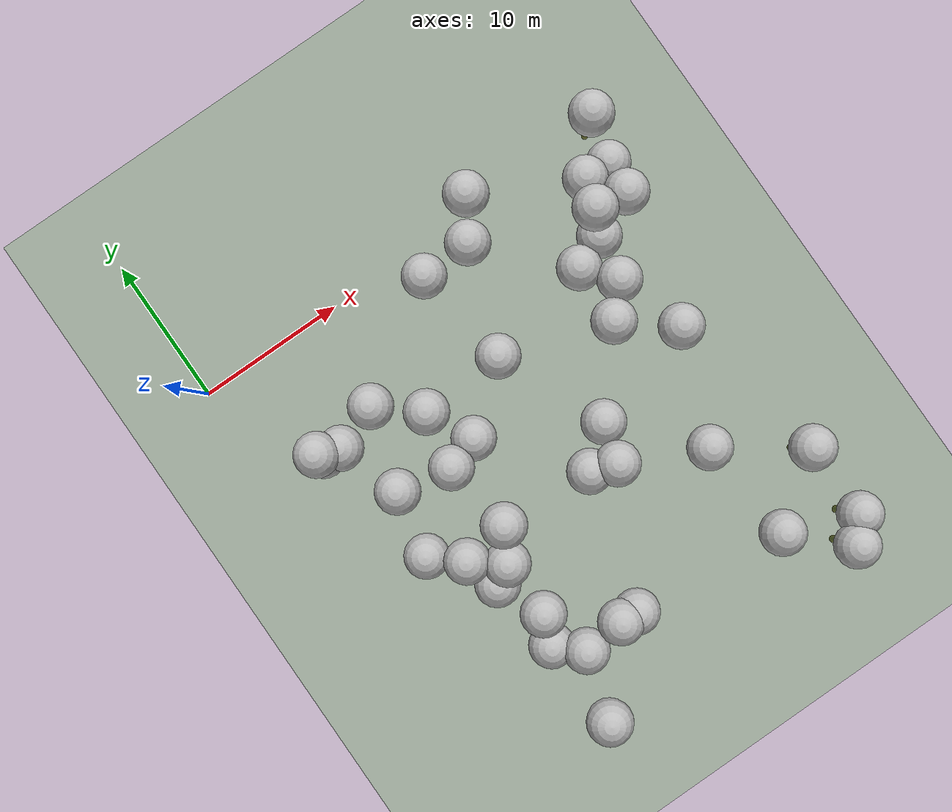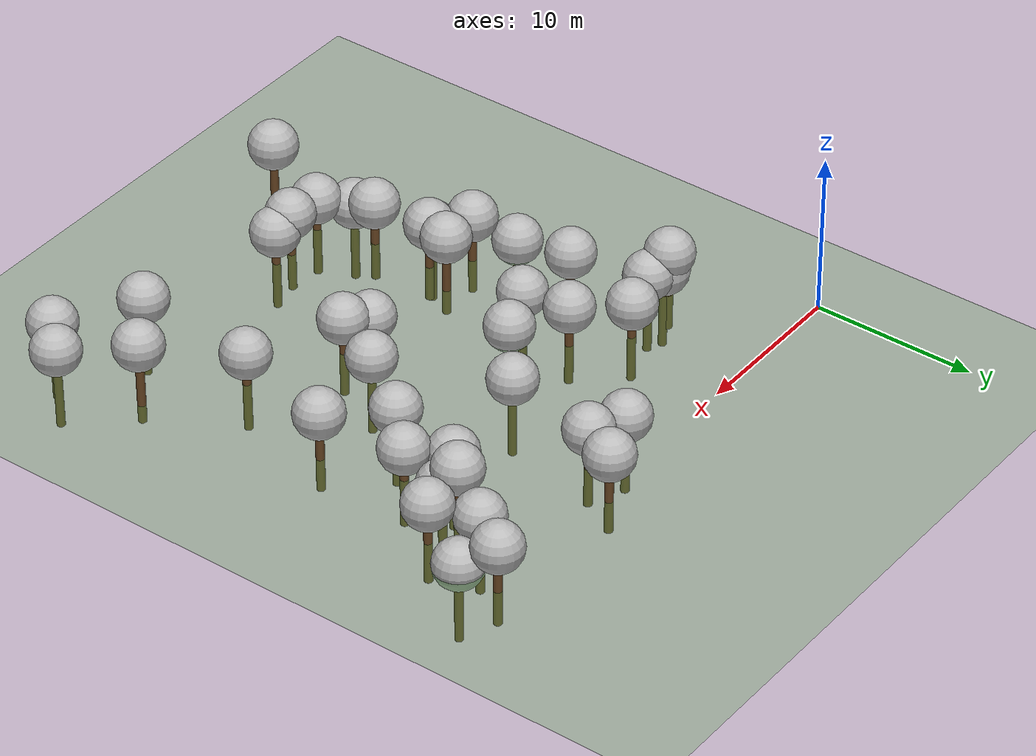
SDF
<sdf version="1.7">
 <world name="default">
  <model name="tree_simple496">
   <static>1</static>
   <link name="link">
    <pose>0 0 0.1 0 -0 0</pose>
    <collision name="collision_trunk">
     <pose>0 0 2 0 -0 0</pose>
     <geometry><cylinder><radius>0.25</radius><length>4</length></cylinder></geometry>
    </collision>
    <collision name="collision_treetop">
     <pose>0 0 5.2 0 -0 0</pose>
     <geometry><sphere><radius>1.5</radius></sphere></geometry>
    </collision>
    <visual name="trunk">
     <pose>0 0 2 0 -0 0</pose>
     <geometry><cylinder><radius>0.25</radius><length>4</length></cylinder></geometry>
     <material>
      <script>
       <uri>model://tree_simple/scripts</uri>
       <uri>model://tree_simple/materials/textures</uri>
       <name>TreeSimple/Trunk</name>
      </script>
     </material>
    </visual>
    <visual name="treetop">
     <pose>0 0 5.2 0 -0 0</pose>
     <geometry><sphere><radius>1.5</radius></sphere></geometry>
     <material>
      <script>
       <uri>model://tree_simple/scripts</uri>
       <uri>model://tree_simple/materials/textures</uri>
       <name>TreeSimple/Treetop</name>
      </script>
     </material>
    </visual>
   </link>
   <pose>13.6194 -26.9856 -2.56277 0 -0 0</pose>
  </model>
  <model name="tree_simple478">
   <static>1</static>
   <link name="link">
    <pose>0 0 0.1 0 -0 0</pose>
    <collision name="collision_trunk">
     <pose>0 0 2 0 -0 0</pose>
     <geometry><cylinder><radius>0.25</radius><length>4</length></cylinder></geometry>
    </collision>
    <collision name="collision_treetop">
     <pose>0 0 5.2 0 -0 0</pose>
     <geometry><sphere><radius>1.5</radius></sphere></geometry>
    </collision>
    <visual name="trunk">
     <pose>0 0 2 0 -0 0</pose>
     <geometry><cylinder><radius>0.25</radius><length>4</length></cylinder></geometry>
     <material>
      <script>
       <uri>model://tree_simple/scripts</uri>
       <uri>model://tree_simple/materials/textures</uri>
       <name>TreeSimple/Trunk</name>
      </script>
     </material>
    </visual>
    <visual name="treetop">
     <pose>0 0 5.2 0 -0 0</pose>
     <geometry><sphere><radius>1.5</radius></sphere></geometry>
     <material>
      <script>
       <uri>model://tree_simple/scripts</uri>
       <uri>model://tree_simple/materials/textures</uri>
       <name>TreeSimple/Treetop</name>
      </script>
     </material>
    </visual>
   </link>
   <pose>6.74093 -12.3163 -2.91655 0 -0 0</pose>
  </model>
  <model name="tree_simple472">
   <static>1</static>
   <link name="link">
    <pose>0 0 0.1 0 -0 0</pose>
    <collision name="collision_trunk">
     <pose>0 0 2 0 -0 0</pose>
     <geometry><cylinder><radius>0.25</radius><length>4</length></cylinder></geometry>
    </collision>
    <collision name="collision_treetop">
     <pose>0 0 5.2 0 -0 0</pose>
     <geometry><sphere><radius>1.5</radius></sphere></geometry>
    </collision>
    <visual name="trunk">
     <pose>0 0 2 0 -0 0</pose>
     <geometry><cylinder><radius>0.25</radius><length>4</length></cylinder></geometry>
     <material>
      <script>
       <uri>model://tree_simple/scripts</uri>
       <uri>model://tree_simple/materials/textures</uri>
       <name>TreeSimple/Trunk</name>
      </script>
     </material>
    </visual>
    <visual name="treetop">
     <pose>0 0 5.2 0 -0 0</pose>
     <geometry><sphere><radius>1.5</radius></sphere></geometry>
     <material>
      <script>
       <uri>model://tree_simple/scripts</uri>
       <uri>model://tree_simple/materials/textures</uri>
       <name>TreeSimple/Treetop</name>
      </script>
     </material>
    </visual>
   </link>
   <pose>9.92229 -23.8303 -2.60524 0 -0 0</pose>
  </model>
  <model name="tree_simple469">
   <static>1</static>
   <link name="link">
    <pose>0 0 0.1 0 -0 0</pose>
    <collision name="collision_trunk">
     <pose>0 0 2 0 -0 0</pose>
     <geometry><cylinder><radius>0.25</radius><length>4</length></cylinder></geometry>
    </collision>
    <collision name="collision_treetop">
     <pose>0 0 5.2 0 -0 0</pose>
     <geometry><sphere><radius>1.5</radius></sphere></geometry>
    </collision>
    <visual name="trunk">
     <pose>0 0 2 0 -0 0</pose>
     <geometry><cylinder><radius>0.25</radius><length>4</length></cylinder></geometry>
     <material>
      <script>
       <uri>model://tree_simple/scripts</uri>
       <uri>model://tree_simple/materials/textures</uri>
       <name>TreeSimple/Trunk</name>
      </script>
     </material>
    </visual>
    <visual name="treetop">
     <pose>0 0 5.2 0 -0 0</pose>
     <geometry><sphere><radius>1.5</radius></sphere></geometry>
     <material>
      <script>
       <uri>model://tree_simple/scripts</uri>
       <uri>model://tree_simple/materials/textures</uri>
       <name>TreeSimple/Treetop</name>
      </script>
     </material>
    </visual>
   </link>
   <pose>28.6909 -31.7516 -3.34481 0 -0 0</pose>
  </model>
  <model name="tree_simple463">
   <static>1</static>
   <link name="link">
    <pose>0 0 0.1 0 -0 0</pose>
    <collision name="collision_trunk">
     <pose>0 0 2 0 -0 0</pose>
     <geometry><cylinder><radius>0.25</radius><length>4</length></cylinder></geometry>
    </collision>
    <collision name="collision_treetop">
     <pose>0 0 5.2 0 -0 0</pose>
     <geometry><sphere><radius>1.5</radius></sphere></geometry>
    </collision>
    <visual name="trunk">
     <pose>0 0 2 0 -0 0</pose>
     <geometry><cylinder><radius>0.25</radius><length>4</length></cylinder></geometry>
     <material>
      <script>
       <uri>model://tree_simple/scripts</uri>
       <uri>model://tree_simple/materials/textures</uri>
       <name>TreeSimple/Trunk</name>
      </script>
     </material>
    </visual>
    <visual name="treetop">
     <pose>0 0 5.2 0 -0 0</pose>
     <geometry><sphere><radius>1.5</radius></sphere></geometry>
     <material>
      <script>
       <uri>model://tree_simple/scripts</uri>
       <uri>model://tree_simple/materials/textures</uri>
       <name>TreeSimple/Treetop</name>
      </script>
     </material>
    </visual>
   </link>
   <pose>4.14453 -7.71734 -3.63022 0 -0 0</pose>
  </model>
  <model name="tree_simple451">
   <static>1</static>
   <link name="link">
    <pose>0 0 0.1 0 -0 0</pose>
    <collision name="collision_trunk">
     <pose>0 0 2 0 -0 0</pose>
     <geometry><cylinder><radius>0.25</radius><length>4</length></cylinder></geometry>
    </collision>
    <collision name="collision_treetop">
     <pose>0 0 5.2 0 -0 0</pose>
     <geometry><sphere><radius>1.5</radius></sphere></geometry>
    </collision>
    <visual name="trunk">
     <pose>0 0 2 0 -0 0</pose>
     <geometry><cylinder><radius>0.25</radius><length>4</length></cylinder></geometry>
     <material>
      <script>
       <uri>model://tree_simple/scripts</uri>
       <uri>model://tree_simple/materials/textures</uri>
       <name>TreeSimple/Trunk</name>
      </script>
     </material>
    </visual>
    <visual name="treetop">
     <pose>0 0 5.2 0 -0 0</pose>
     <geometry><sphere><radius>1.5</radius></sphere></geometry>
     <material>
      <script>
       <uri>model://tree_simple/scripts</uri>
       <uri>model://tree_simple/materials/textures</uri>
       <name>TreeSimple/Treetop</name>
      </script>
     </material>
    </visual>
   </link>
   <pose>25.0881 -28.1508 -2.22169 0 -0 0</pose>
  </model>
  <model name="tree_simple439">
   <static>1</static>
   <link name="link">
    <pose>0 0 0.1 0 -0 0</pose>
    <collision name="collision_trunk">
     <pose>0 0 2 0 -0 0</pose>
     <geometry><cylinder><radius>0.25</radius><length>4</length></cylinder></geometry>
    </collision>
    <collision name="collision_treetop">
     <pose>0 0 5.2 0 -0 0</pose>
     <geometry><sphere><radius>1.5</radius></sphere></geometry>
    </collision>
    <visual name="trunk">
     <pose>0 0 2 0 -0 0</pose>
     <geometry><cylinder><radius>0.25</radius><length>4</length></cylinder></geometry>
     <material>
      <script>
       <uri>model://tree_simple/scripts</uri>
       <uri>model://tree_simple/materials/textures</uri>
       <name>TreeSimple/Trunk</name>
      </script>
     </material>
    </visual>
    <visual name="treetop">
     <pose>0 0 5.2 0 -0 0</pose>
     <geometry><sphere><radius>1.5</radius></sphere></geometry>
     <material>
      <script>
       <uri>model://tree_simple/scripts</uri>
       <uri>model://tree_simple/materials/textures</uri>
       <name>TreeSimple/Treetop</name>
      </script>
     </material>
    </visual>
   </link>
   <pose>8.56501 -20.7641 -3.57656 0 -0 0</pose>
  </model>
  <model name="tree_simple432">
   <static>1</static>
   <link name="link">
    <pose>0 0 0.1 0 -0 0</pose>
    <collision name="collision_trunk">
     <pose>0 0 2 0 -0 0</pose>
     <geometry><cylinder><radius>0.25</radius><length>4</length></cylinder></geometry>
    </collision>
    <collision name="collision_treetop">
     <pose>0 0 5.2 0 -0 0</pose>
     <geometry><sphere><radius>1.5</radius></sphere></geometry>
    </collision>
    <visual name="trunk">
     <pose>0 0 2 0 -0 0</pose>
     <geometry><cylinder><radius>0.25</radius><length>4</length></cylinder></geometry>
     <material>
      <script>
       <uri>model://tree_simple/scripts</uri>
       <uri>model://tree_simple/materials/textures</uri>
       <name>TreeSimple/Trunk</name>
      </script>
     </material>
    </visual>
    <visual name="treetop">
     <pose>0 0 5.2 0 -0 0</pose>
     <geometry><sphere><radius>1.5</radius></sphere></geometry>
     <material>
      <script>
       <uri>model://tree_simple/scripts</uri>
       <uri>model://tree_simple/materials/textures</uri>
       <name>TreeSimple/Treetop</name>
      </script>
     </material>
    </visual>
   </link>
   <pose>8.39658 -6.88849 -3.11199 0 -0 0</pose>
  </model>
  <model name="tree_simple429">
   <static>1</static>
   <link name="link">
    <pose>0 0 0.1 0 -0 0</pose>
    <collision name="collision_trunk">
     <pose>0 0 2 0 -0 0</pose>
     <geometry><cylinder><radius>0.25</radius><length>4</length></cylinder></geometry>
    </collision>
    <collision name="collision_treetop">
     <pose>0 0 5.2 0 -0 0</pose>
     <geometry><sphere><radius>1.5</radius></sphere></geometry>
    </collision>
    <visual name="trunk">
     <pose>0 0 2 0 -0 0</pose>
     <geometry><cylinder><radius>0.25</radius><length>4</length></cylinder></geometry>
     <material>
      <script>
       <uri>model://tree_simple/scripts</uri>
       <uri>model://tree_simple/materials/textures</uri>
       <name>TreeSimple/Trunk</name>
      </script>
     </material>
    </visual>
    <visual name="treetop">
     <pose>0 0 5.2 0 -0 0</pose>
     <geometry><sphere><radius>1.5</radius></sphere></geometry>
     <material>
      <script>
       <uri>model://tree_simple/scripts</uri>
       <uri>model://tree_simple/materials/textures</uri>
       <name>TreeSimple/Treetop</name>
      </script>
     </material>
    </visual>
   </link>
   <pose>29.4727 -24.7358 -1.28628 0 -0 0</pose>
  </model>
  <model name="tree_simple428">
   <static>1</static>
   <link name="link">
    <pose>0 0 0.1 0 -0 0</pose>
    <collision name="collision_trunk">
     <pose>0 0 2 0 -0 0</pose>
     <geometry><cylinder><radius>0.25</radius><length>4</length></cylinder></geometry>
    </collision>
    <collision name="collision_treetop">
     <pose>0 0 5.2 0 -0 0</pose>
     <geometry><sphere><radius>1.5</radius></sphere></geometry>
    </collision>
    <visual name="trunk">
     <pose>0 0 2 0 -0 0</pose>
     <geometry><cylinder><radius>0.25</radius><length>4</length></cylinder></geometry>
     <material>
      <script>
       <uri>model://tree_simple/scripts</uri>
       <uri>model://tree_simple/materials/textures</uri>
       <name>TreeSimple/Trunk</name>
      </script>
     </material>
    </visual>
    <visual name="treetop">
     <pose>0 0 5.2 0 -0 0</pose>
     <geometry><sphere><radius>1.5</radius></sphere></geometry>
     <material>
      <script>
       <uri>model://tree_simple/scripts</uri>
       <uri>model://tree_simple/materials/textures</uri>
       <name>TreeSimple/Treetop</name>
      </script>
     </material>
    </visual>
   </link>
   <pose>9.87664 -19.9509 -2.39562 0 -0 0</pose>
  </model>
  <model name="tree_simple394">
   <static>1</static>
   <link name="link">
    <pose>0 0 0.1 0 -0 0</pose>
    <collision name="collision_trunk">
     <pose>0 0 2 0 -0 0</pose>
     <geometry><cylinder><radius>0.25</radius><length>4</length></cylinder></geometry>
    </collision>
    <collision name="collision_treetop">
     <pose>0 0 5.2 0 -0 0</pose>
     <geometry><sphere><radius>1.5</radius></sphere></geometry>
    </collision>
    <visual name="trunk">
     <pose>0 0 2 0 -0 0</pose>
     <geometry><cylinder><radius>0.25</radius><length>4</length></cylinder></geometry>
     <material>
      <script>
       <uri>model://tree_simple/scripts</uri>
       <uri>model://tree_simple/materials/textures</uri>
       <name>TreeSimple/Trunk</name>
      </script>
     </material>
    </visual>
    <visual name="treetop">
     <pose>0 0 5.2 0 -0 0</pose>
     <geometry><sphere><radius>1.5</radius></sphere></geometry>
     <material>
      <script>
       <uri>model://tree_simple/scripts</uri>
       <uri>model://tree_simple/materials/textures</uri>
       <name>TreeSimple/Treetop</name>
      </script>
     </material>
    </visual>
   </link>
   <pose>26.6659 -6.19294 -3.92468 0 -0 0</pose>
  </model>
  <model name="tree_simple389">
   <static>1</static>
   <link name="link">
    <pose>0 0 0.1 0 -0 0</pose>
    <collision name="collision_trunk">
     <pose>0 0 2 0 -0 0</pose>
     <geometry><cylinder><radius>0.25</radius><length>4</length></cylinder></geometry>
    </collision>
    <collision name="collision_treetop">
     <pose>0 0 5.2 0 -0 0</pose>
     <geometry><sphere><radius>1.5</radius></sphere></geometry>
    </collision>
    <visual name="trunk">
     <pose>0 0 2 0 -0 0</pose>
     <geometry><cylinder><radius>0.25</radius><length>4</length></cylinder></geometry>
     <material>
      <script>
       <uri>model://tree_simple/scripts</uri>
       <uri>model://tree_simple/materials/textures</uri>
       <name>TreeSimple/Trunk</name>
      </script>
     </material>
    </visual>
    <visual name="treetop">
     <pose>0 0 5.2 0 -0 0</pose>
     <geometry><sphere><radius>1.5</radius></sphere></geometry>
     <material>
      <script>
       <uri>model://tree_simple/scripts</uri>
       <uri>model://tree_simple/materials/textures</uri>
       <name>TreeSimple/Treetop</name>
      </script>
     </material>
    </visual>
   </link>
   <pose>12.5934 -12.2598 -4.52729 0 -0 0</pose>
  </model>
  <model name="tree_simple377">
   <static>1</static>
   <link name="link">
    <pose>0 0 0.1 0 -0 0</pose>
    <collision name="collision_trunk">
     <pose>0 0 2 0 -0 0</pose>
     <geometry><cylinder><radius>0.25</radius><length>4</length></cylinder></geometry>
    </collision>
    <collision name="collision_treetop">
     <pose>0 0 5.2 0 -0 0</pose>
     <geometry><sphere><radius>1.5</radius></sphere></geometry>
    </collision>
    <visual name="trunk">
     <pose>0 0 2 0 -0 0</pose>
     <geometry><cylinder><radius>0.25</radius><length>4</length></cylinder></geometry>
     <material>
      <script>
       <uri>model://tree_simple/scripts</uri>
       <uri>model://tree_simple/materials/textures</uri>
       <name>TreeSimple/Trunk</name>
      </script>
     </material>
    </visual>
    <visual name="treetop">
     <pose>0 0 5.2 0 -0 0</pose>
     <geometry><sphere><radius>1.5</radius></sphere></geometry>
     <material>
      <script>
       <uri>model://tree_simple/scripts</uri>
       <uri>model://tree_simple/materials/textures</uri>
       <name>TreeSimple/Treetop</name>
      </script>
     </material>
    </visual>
   </link>
   <pose>10.8206 -27.3699 -3.25962 0 -0 0</pose>
  </model>
  <model name="tree_simple327">
   <static>1</static>
   <link name="link">
    <pose>0 0 0.1 0 -0 0</pose>
    <collision name="collision_trunk">
     <pose>0 0 2 0 -0 0</pose>
     <geometry><cylinder><radius>0.25</radius><length>4</length></cylinder></geometry>
    </collision>
    <collision name="collision_treetop">
     <pose>0 0 5.2 0 -0 0</pose>
     <geometry><sphere><radius>1.5</radius></sphere></geometry>
    </collision>
    <visual name="trunk">
     <pose>0 0 2 0 -0 0</pose>
     <geometry><cylinder><radius>0.25</radius><length>4</length></cylinder></geometry>
     <material>
      <script>
       <uri>model://tree_simple/scripts</uri>
       <uri>model://tree_simple/materials/textures</uri>
       <name>TreeSimple/Trunk</name>
      </script>
     </material>
    </visual>
    <visual name="treetop">
     <pose>0 0 5.2 0 -0 0</pose>
     <geometry><sphere><radius>1.5</radius></sphere></geometry>
     <material>
      <script>
       <uri>model://tree_simple/scripts</uri>
       <uri>model://tree_simple/materials/textures</uri>
       <name>TreeSimple/Treetop</name>
      </script>
     </material>
    </visual>
   </link>
   <pose>5.78439 -16.7663 -4.47368 0 -0 0</pose>
  </model>
  <model name="tree_simple316">
   <static>1</static>
   <link name="link">
    <pose>0 0 0.1 0 -0 0</pose>
    <collision name="collision_trunk">
     <pose>0 0 2 0 -0 0</pose>
     <geometry><cylinder><radius>0.25</radius><length>4</length></cylinder></geometry>
    </collision>
    <collision name="collision_treetop">
     <pose>0 0 5.2 0 -0 0</pose>
     <geometry><sphere><radius>1.5</radius></sphere></geometry>
    </collision>
    <visual name="trunk">
     <pose>0 0 2 0 -0 0</pose>
     <geometry><cylinder><radius>0.25</radius><length>4</length></cylinder></geometry>
     <material>
      <script>
       <uri>model://tree_simple/scripts</uri>
       <uri>model://tree_simple/materials/textures</uri>
       <name>TreeSimple/Trunk</name>
      </script>
     </material>
    </visual>
    <visual name="treetop">
     <pose>0 0 5.2 0 -0 0</pose>
     <geometry><sphere><radius>1.5</radius></sphere></geometry>
     <material>
      <script>
       <uri>model://tree_simple/scripts</uri>
       <uri>model://tree_simple/materials/textures</uri>
       <name>TreeSimple/Treetop</name>
      </script>
     </material>
    </visual>
   </link>
   <pose>19.353 -1.91243 -2.69151 0 -0 0</pose>
  </model>
  <model name="tree_simple315">
   <static>1</static>
   <link name="link">
    <pose>0 0 0.1 0 -0 0</pose>
    <collision name="collision_trunk">
     <pose>0 0 2 0 -0 0</pose>
     <geometry><cylinder><radius>0.25</radius><length>4</length></cylinder></geometry>
    </collision>
    <collision name="collision_treetop">
     <pose>0 0 5.2 0 -0 0</pose>
     <geometry><sphere><radius>1.5</radius></sphere></geometry>
    </collision>
    <visual name="trunk">
     <pose>0 0 2 0 -0 0</pose>
     <geometry><cylinder><radius>0.25</radius><length>4</length></cylinder></geometry>
     <material>
      <script>
       <uri>model://tree_simple/scripts</uri>
       <uri>model://tree_simple/materials/textures</uri>
       <name>TreeSimple/Trunk</name>
      </script>
     </material>
    </visual>
    <visual name="treetop">
     <pose>0 0 5.2 0 -0 0</pose>
     <geometry><sphere><radius>1.5</radius></sphere></geometry>
     <material>
      <script>
       <uri>model://tree_simple/scripts</uri>
       <uri>model://tree_simple/materials/textures</uri>
       <name>TreeSimple/Treetop</name>
      </script>
     </material>
    </visual>
   </link>
   <pose>20.9855 0.626464 -2.2183 0 -0 0</pose>
  </model>
  <model name="tree_simple314">
   <static>1</static>
   <link name="link">
    <pose>0 0 0.1 0 -0 0</pose>
    <collision name="collision_trunk">
     <pose>0 0 2 0 -0 0</pose>
     <geometry><cylinder><radius>0.25</radius><length>4</length></cylinder></geometry>
    </collision>
    <collision name="collision_treetop">
     <pose>0 0 5.2 0 -0 0</pose>
     <geometry><sphere><radius>1.5</radius></sphere></geometry>
    </collision>
    <visual name="trunk">
     <pose>0 0 2 0 -0 0</pose>
     <geometry><cylinder><radius>0.25</radius><length>4</length></cylinder></geometry>
     <material>
      <script>
       <uri>model://tree_simple/scripts</uri>
       <uri>model://tree_simple/materials/textures</uri>
       <name>TreeSimple/Trunk</name>
      </script>
     </material>
    </visual>
    <visual name="treetop">
     <pose>0 0 5.2 0 -0 0</pose>
     <geometry><sphere><radius>1.5</radius></sphere></geometry>
     <material>
      <script>
       <uri>model://tree_simple/scripts</uri>
       <uri>model://tree_simple/materials/textures</uri>
       <name>TreeSimple/Treetop</name>
      </script>
     </material>
    </visual>
   </link>
   <pose>15.9306 -1.88176 -3.92696 0 -0 0</pose>
  </model>
  <model name="tree_simple309">
   <static>1</static>
   <link name="link">
    <pose>0 0 0.1 0 -0 0</pose>
    <collision name="collision_trunk">
     <pose>0 0 2 0 -0 0</pose>
     <geometry><cylinder><radius>0.25</radius><length>4</length></cylinder></geometry>
    </collision>
    <collision name="collision_treetop">
     <pose>0 0 5.2 0 -0 0</pose>
     <geometry><sphere><radius>1.5</radius></sphere></geometry>
    </collision>
    <visual name="trunk">
     <pose>0 0 2 0 -0 0</pose>
     <geometry><cylinder><radius>0.25</radius><length>4</length></cylinder></geometry>
     <material>
      <script>
       <uri>model://tree_simple/scripts</uri>
       <uri>model://tree_simple/materials/textures</uri>
       <name>TreeSimple/Trunk</name>
      </script>
     </material>
    </visual>
    <visual name="treetop">
     <pose>0 0 5.2 0 -0 0</pose>
     <geometry><sphere><radius>1.5</radius></sphere></geometry>
     <material>
      <script>
       <uri>model://tree_simple/scripts</uri>
       <uri>model://tree_simple/materials/textures</uri>
       <name>TreeSimple/Treetop</name>
      </script>
     </material>
    </visual>
   </link>
   <pose>19.1749 -18.8001 -2.99208 0 -0 0</pose>
  </model>
  <model name="tree_simple301">
   <static>1</static>
   <link name="link">
    <pose>0 0 0.1 0 -0 0</pose>
    <collision name="collision_trunk">
     <pose>0 0 2 0 -0 0</pose>
     <geometry><cylinder><radius>0.25</radius><length>4</length></cylinder></geometry>
    </collision>
    <collision name="collision_treetop">
     <pose>0 0 5.2 0 -0 0</pose>
     <geometry><sphere><radius>1.5</radius></sphere></geometry>
    </collision>
    <visual name="trunk">
     <pose>0 0 2 0 -0 0</pose>
     <geometry><cylinder><radius>0.25</radius><length>4</length></cylinder></geometry>
     <material>
      <script>
       <uri>model://tree_simple/scripts</uri>
       <uri>model://tree_simple/materials/textures</uri>
       <name>TreeSimple/Trunk</name>
      </script>
     </material>
    </visual>
    <visual name="treetop">
     <pose>0 0 5.2 0 -0 0</pose>
     <geometry><sphere><radius>1.5</radius></sphere></geometry>
     <material>
      <script>
       <uri>model://tree_simple/scripts</uri>
       <uri>model://tree_simple/materials/textures</uri>
       <name>TreeSimple/Treetop</name>
      </script>
     </material>
    </visual>
   </link>
   <pose>27.965 -2.69695 -3.42745 0 -0 0</pose>
  </model>
  <model name="tree_simple292">
   <static>1</static>
   <link name="link">
    <pose>0 0 0.1 0 -0 0</pose>
    <collision name="collision_trunk">
     <pose>0 0 2 0 -0 0</pose>
     <geometry><cylinder><radius>0.25</radius><length>4</length></cylinder></geometry>
    </collision>
    <collision name="collision_treetop">
     <pose>0 0 5.2 0 -0 0</pose>
     <geometry><sphere><radius>1.5</radius></sphere></geometry>
    </collision>
    <visual name="trunk">
     <pose>0 0 2 0 -0 0</pose>
     <geometry><cylinder><radius>0.25</radius><length>4</length></cylinder></geometry>
     <material>
      <script>
       <uri>model://tree_simple/scripts</uri>
       <uri>model://tree_simple/materials/textures</uri>
       <name>TreeSimple/Trunk</name>
      </script>
     </material>
    </visual>
    <visual name="treetop">
     <pose>0 0 5.2 0 -0 0</pose>
     <geometry><sphere><radius>1.5</radius></sphere></geometry>
     <material>
      <script>
       <uri>model://tree_simple/scripts</uri>
       <uri>model://tree_simple/materials/textures</uri>
       <name>TreeSimple/Treetop</name>
      </script>
     </material>
    </visual>
   </link>
   <pose>16.8918 -8.82904 -4.00925 0 -0 0</pose>
  </model>
  <model name="tree_simple290">
   <static>1</static>
   <link name="link">
    <pose>0 0 0.1 0 -0 0</pose>
    <collision name="collision_trunk">
     <pose>0 0 2 0 -0 0</pose>
     <geometry><cylinder><radius>0.25</radius><length>4</length></cylinder></geometry>
    </collision>
    <collision name="collision_treetop">
     <pose>0 0 5.2 0 -0 0</pose>
     <geometry><sphere><radius>1.5</radius></sphere></geometry>
    </collision>
    <visual name="trunk">
     <pose>0 0 2 0 -0 0</pose>
     <geometry><cylinder><radius>0.25</radius><length>4</length></cylinder></geometry>
     <material>
      <script>
       <uri>model://tree_simple/scripts</uri>
       <uri>model://tree_simple/materials/textures</uri>
       <name>TreeSimple/Trunk</name>
      </script>
     </material>
    </visual>
    <visual name="treetop">
     <pose>0 0 5.2 0 -0 0</pose>
     <geometry><sphere><radius>1.5</radius></sphere></geometry>
     <material>
      <script>
       <uri>model://tree_simple/scripts</uri>
       <uri>model://tree_simple/materials/textures</uri>
       <name>TreeSimple/Treetop</name>
      </script>
     </material>
    </visual>
   </link>
   <pose>27.3399 -13.9618 -2.26786 0 -0 0</pose>
  </model>
  <model name="tree_simple288">
   <static>1</static>
   <link name="link">
    <pose>0 0 0.1 0 -0 0</pose>
    <collision name="collision_trunk">
     <pose>0 0 2 0 -0 0</pose>
     <geometry><cylinder><radius>0.25</radius><length>4</length></cylinder></geometry>
    </collision>
    <collision name="collision_treetop">
     <pose>0 0 5.2 0 -0 0</pose>
     <geometry><sphere><radius>1.5</radius></sphere></geometry>
    </collision>
    <visual name="trunk">
     <pose>0 0 2 0 -0 0</pose>
     <geometry><cylinder><radius>0.25</radius><length>4</length></cylinder></geometry>
     <material>
      <script>
       <uri>model://tree_simple/scripts</uri>
       <uri>model://tree_simple/materials/textures</uri>
       <name>TreeSimple/Trunk</name>
      </script>
     </material>
    </visual>
    <visual name="treetop">
     <pose>0 0 5.2 0 -0 0</pose>
     <geometry><sphere><radius>1.5</radius></sphere></geometry>
     <material>
      <script>
       <uri>model://tree_simple/scripts</uri>
       <uri>model://tree_simple/materials/textures</uri>
       <name>TreeSimple/Treetop</name>
      </script>
     </material>
    </visual>
   </link>
   <pose>27.0972 -4.81041 -1.81513 0 -0 0</pose>
  </model>
  <model name="tree_simple267">
   <static>1</static>
   <link name="link">
    <pose>0 0 0.1 0 -0 0</pose>
    <collision name="collision_trunk">
     <pose>0 0 2 0 -0 0</pose>
     <geometry><cylinder><radius>0.25</radius><length>4</length></cylinder></geometry>
    </collision>
    <collision name="collision_treetop">
     <pose>0 0 5.2 0 -0 0</pose>
     <geometry><sphere><radius>1.5</radius></sphere></geometry>
    </collision>
    <visual name="trunk">
     <pose>0 0 2 0 -0 0</pose>
     <geometry><cylinder><radius>0.25</radius><length>4</length></cylinder></geometry>
     <material>
      <script>
       <uri>model://tree_simple/scripts</uri>
       <uri>model://tree_simple/materials/textures</uri>
       <name>TreeSimple/Trunk</name>
      </script>
     </material>
    </visual>
    <visual name="treetop">
     <pose>0 0 5.2 0 -0 0</pose>
     <geometry><sphere><radius>1.5</radius></sphere></geometry>
     <material>
      <script>
       <uri>model://tree_simple/scripts</uri>
       <uri>model://tree_simple/materials/textures</uri>
       <name>TreeSimple/Treetop</name>
      </script>
     </material>
    </visual>
   </link>
   <pose>26.0311 -9.25679 -3.26423 0 -0 0</pose>
  </model>
  <model name="tree_simple255">
   <static>1</static>
   <link name="link">
    <pose>0 0 0.1 0 -0 0</pose>
    <collision name="collision_trunk">
     <pose>0 0 2 0 -0 0</pose>
     <geometry><cylinder><radius>0.25</radius><length>4</length></cylinder></geometry>
    </collision>
    <collision name="collision_treetop">
     <pose>0 0 5.2 0 -0 0</pose>
     <geometry><sphere><radius>1.5</radius></sphere></geometry>
    </collision>
    <visual name="trunk">
     <pose>0 0 2 0 -0 0</pose>
     <geometry><cylinder><radius>0.25</radius><length>4</length></cylinder></geometry>
     <material>
      <script>
       <uri>model://tree_simple/scripts</uri>
       <uri>model://tree_simple/materials/textures</uri>
       <name>TreeSimple/Trunk</name>
      </script>
     </material>
    </visual>
    <visual name="treetop">
     <pose>0 0 5.2 0 -0 0</pose>
     <geometry><sphere><radius>1.5</radius></sphere></geometry>
     <material>
      <script>
       <uri>model://tree_simple/scripts</uri>
       <uri>model://tree_simple/materials/textures</uri>
       <name>TreeSimple/Treetop</name>
      </script>
     </material>
    </visual>
   </link>
   <pose>30.097 -30.3027 -3.77295 0 -0 0</pose>
  </model>
  <model name="tree_simple249">
   <static>1</static>
   <link name="link">
    <pose>0 0 0.1 0 -0 0</pose>
    <collision name="collision_trunk">
     <pose>0 0 2 0 -0 0</pose>
     <geometry><cylinder><radius>0.25</radius><length>4</length></cylinder></geometry>
    </collision>
    <collision name="collision_treetop">
     <pose>0 0 5.2 0 -0 0</pose>
     <geometry><sphere><radius>1.5</radius></sphere></geometry>
    </collision>
    <visual name="trunk">
     <pose>0 0 2 0 -0 0</pose>
     <geometry><cylinder><radius>0.25</radius><length>4</length></cylinder></geometry>
     <material>
      <script>
       <uri>model://tree_simple/scripts</uri>
       <uri>model://tree_simple/materials/textures</uri>
       <name>TreeSimple/Trunk</name>
      </script>
     </material>
    </visual>
    <visual name="treetop">
     <pose>0 0 5.2 0 -0 0</pose>
     <geometry><sphere><radius>1.5</radius></sphere></geometry>
     <material>
      <script>
       <uri>model://tree_simple/scripts</uri>
       <uri>model://tree_simple/materials/textures</uri>
       <name>TreeSimple/Treetop</name>
      </script>
     </material>
    </visual>
   </link>
   <pose>9.52111 -31.5381 -1.95814 0 -0 0</pose>
  </model>
  <model name="tree_simple222">
   <static>1</static>
   <link name="link">
    <pose>0 0 0.1 0 -0 0</pose>
    <collision name="collision_trunk">
     <pose>0 0 2 0 -0 0</pose>
     <geometry><cylinder><radius>0.25</radius><length>4</length></cylinder></geometry>
    </collision>
    <collision name="collision_treetop">
     <pose>0 0 5.2 0 -0 0</pose>
     <geometry><sphere><radius>1.5</radius></sphere></geometry>
    </collision>
    <visual name="trunk">
     <pose>0 0 2 0 -0 0</pose>
     <geometry><cylinder><radius>0.25</radius><length>4</length></cylinder></geometry>
     <material>
      <script>
       <uri>model://tree_simple/scripts</uri>
       <uri>model://tree_simple/materials/textures</uri>
       <name>TreeSimple/Trunk</name>
      </script>
     </material>
    </visual>
    <visual name="treetop">
     <pose>0 0 5.2 0 -0 0</pose>
     <geometry><sphere><radius>1.5</radius></sphere></geometry>
     <material>
      <script>
       <uri>model://tree_simple/scripts</uri>
       <uri>model://tree_simple/materials/textures</uri>
       <name>TreeSimple/Treetop</name>
      </script>
     </material>
    </visual>
   </link>
   <pose>3.92505 -7.51224 -2.46065 0 -0 0</pose>
  </model>
  <model name="tree_simple211">
   <static>1</static>
   <link name="link">
    <pose>0 0 0.1 0 -0 0</pose>
    <collision name="collision_trunk">
     <pose>0 0 2 0 -0 0</pose>
     <geometry><cylinder><radius>0.25</radius><length>4</length></cylinder></geometry>
    </collision>
    <collision name="collision_treetop">
     <pose>0 0 5.2 0 -0 0</pose>
     <geometry><sphere><radius>1.5</radius></sphere></geometry>
    </collision>
    <visual name="trunk">
     <pose>0 0 2 0 -0 0</pose>
     <geometry><cylinder><radius>0.25</radius><length>4</length></cylinder></geometry>
     <material>
      <script>
       <uri>model://tree_simple/scripts</uri>
       <uri>model://tree_simple/materials/textures</uri>
       <name>TreeSimple/Trunk</name>
      </script>
     </material>
    </visual>
    <visual name="treetop">
     <pose>0 0 5.2 0 -0 0</pose>
     <geometry><sphere><radius>1.5</radius></sphere></geometry>
     <material>
      <script>
       <uri>model://tree_simple/scripts</uri>
       <uri>model://tree_simple/materials/textures</uri>
       <name>TreeSimple/Treetop</name>
      </script>
     </material>
    </visual>
   </link>
   <pose>24.1089 -11.2742 -2.68659 0 -0 0</pose>
  </model>
  <model name="tree_simple191">
   <static>1</static>
   <link name="link">
    <pose>0 0 0.1 0 -0 0</pose>
    <collision name="collision_trunk">
     <pose>0 0 2 0 -0 0</pose>
     <geometry><cylinder><radius>0.25</radius><length>4</length></cylinder></geometry>
    </collision>
    <collision name="collision_treetop">
     <pose>0 0 5.2 0 -0 0</pose>
     <geometry><sphere><radius>1.5</radius></sphere></geometry>
    </collision>
    <visual name="trunk">
     <pose>0 0 2 0 -0 0</pose>
     <geometry><cylinder><radius>0.25</radius><length>4</length></cylinder></geometry>
     <material>
      <script>
       <uri>model://tree_simple/scripts</uri>
       <uri>model://tree_simple/materials/textures</uri>
       <name>TreeSimple/Trunk</name>
      </script>
     </material>
    </visual>
    <visual name="treetop">
     <pose>0 0 5.2 0 -0 0</pose>
     <geometry><sphere><radius>1.5</radius></sphere></geometry>
     <material>
      <script>
       <uri>model://tree_simple/scripts</uri>
       <uri>model://tree_simple/materials/textures</uri>
       <name>TreeSimple/Treetop</name>
      </script>
     </material>
    </visual>
   </link>
   <pose>7.88783 -18.3803 -2.32851 0 -0 0</pose>
  </model>
  <model name="tree_simple178">
   <static>1</static>
   <link name="link">
    <pose>0 0 0.1 0 -0 0</pose>
    <collision name="collision_trunk">
     <pose>0 0 2 0 -0 0</pose>
     <geometry><cylinder><radius>0.25</radius><length>4</length></cylinder></geometry>
    </collision>
    <collision name="collision_treetop">
     <pose>0 0 5.2 0 -0 0</pose>
     <geometry><sphere><radius>1.5</radius></sphere></geometry>
    </collision>
    <visual name="trunk">
     <pose>0 0 2 0 -0 0</pose>
     <geometry><cylinder><radius>0.25</radius><length>4</length></cylinder></geometry>
     <material>
      <script>
       <uri>model://tree_simple/scripts</uri>
       <uri>model://tree_simple/materials/textures</uri>
       <name>TreeSimple/Trunk</name>
      </script>
     </material>
    </visual>
    <visual name="treetop">
     <pose>0 0 5.2 0 -0 0</pose>
     <geometry><sphere><radius>1.5</radius></sphere></geometry>
     <material>
      <script>
       <uri>model://tree_simple/scripts</uri>
       <uri>model://tree_simple/materials/textures</uri>
       <name>TreeSimple/Treetop</name>
      </script>
     </material>
    </visual>
   </link>
   <pose>24.3792 -7.18218 -3.58897 0 -0 0</pose>
  </model>
  <model name="tree_simple168">
   <static>1</static>
   <link name="link">
    <pose>0 0 0.1 0 -0 0</pose>
    <collision name="collision_trunk">
     <pose>0 0 2 0 -0 0</pose>
     <geometry><cylinder><radius>0.25</radius><length>4</length></cylinder></geometry>
    </collision>
    <collision name="collision_treetop">
     <pose>0 0 5.2 0 -0 0</pose>
     <geometry><sphere><radius>1.5</radius></sphere></geometry>
    </collision>
    <visual name="trunk">
     <pose>0 0 2 0 -0 0</pose>
     <geometry><cylinder><radius>0.25</radius><length>4</length></cylinder></geometry>
     <material>
      <script>
       <uri>model://tree_simple/scripts</uri>
       <uri>model://tree_simple/materials/textures</uri>
       <name>TreeSimple/Trunk</name>
      </script>
     </material>
    </visual>
    <visual name="treetop">
     <pose>0 0 5.2 0 -0 0</pose>
     <geometry><sphere><radius>1.5</radius></sphere></geometry>
     <material>
      <script>
       <uri>model://tree_simple/scripts</uri>
       <uri>model://tree_simple/materials/textures</uri>
       <name>TreeSimple/Treetop</name>
      </script>
     </material>
    </visual>
   </link>
   <pose>14.8234 -27.1347 -3.18381 0 -0 0</pose>
  </model>
  <model name="tree_simple157">
   <static>1</static>
   <link name="link">
    <pose>0 0 0.1 0 -0 0</pose>
    <collision name="collision_trunk">
     <pose>0 0 2 0 -0 0</pose>
     <geometry><cylinder><radius>0.25</radius><length>4</length></cylinder></geometry>
    </collision>
    <collision name="collision_treetop">
     <pose>0 0 5.2 0 -0 0</pose>
     <geometry><sphere><radius>1.5</radius></sphere></geometry>
    </collision>
    <visual name="trunk">
     <pose>0 0 2 0 -0 0</pose>
     <geometry><cylinder><radius>0.25</radius><length>4</length></cylinder></geometry>
     <material>
      <script>
       <uri>model://tree_simple/scripts</uri>
       <uri>model://tree_simple/materials/textures</uri>
       <name>TreeSimple/Trunk</name>
      </script>
     </material>
    </visual>
    <visual name="treetop">
     <pose>0 0 5.2 0 -0 0</pose>
     <geometry><sphere><radius>1.5</radius></sphere></geometry>
     <material>
      <script>
       <uri>model://tree_simple/scripts</uri>
       <uri>model://tree_simple/materials/textures</uri>
       <name>TreeSimple/Treetop</name>
      </script>
     </material>
    </visual>
   </link>
   <pose>17.4643 -18.2233 -3.5861 0 -0 0</pose>
  </model>
  <model name="tree_simple156">
   <static>1</static>
   <link name="link">
    <pose>0 0 0.1 0 -0 0</pose>
    <collision name="collision_trunk">
     <pose>0 0 2 0 -0 0</pose>
     <geometry><cylinder><radius>0.25</radius><length>4</length></cylinder></geometry>
    </collision>
    <collision name="collision_treetop">
     <pose>0 0 5.2 0 -0 0</pose>
     <geometry><sphere><radius>1.5</radius></sphere></geometry>
    </collision>
    <visual name="trunk">
     <pose>0 0 2 0 -0 0</pose>
     <geometry><cylinder><radius>0.25</radius><length>4</length></cylinder></geometry>
     <material>
      <script>
       <uri>model://tree_simple/scripts</uri>
       <uri>model://tree_simple/materials/textures</uri>
       <name>TreeSimple/Trunk</name>
      </script>
     </material>
    </visual>
    <visual name="treetop">
     <pose>0 0 5.2 0 -0 0</pose>
     <geometry><sphere><radius>1.5</radius></sphere></geometry>
     <material>
      <script>
       <uri>model://tree_simple/scripts</uri>
       <uri>model://tree_simple/materials/textures</uri>
       <name>TreeSimple/Treetop</name>
      </script>
     </material>
    </visual>
   </link>
   <pose>20.0356 -16.16 -3.89869 0 -0 0</pose>
  </model>
  <model name="tree_simple124">
   <static>1</static>
   <link name="link">
    <pose>0 0 0.1 0 -0 0</pose>
    <collision name="collision_trunk">
     <pose>0 0 2 0 -0 0</pose>
     <geometry><cylinder><radius>0.25</radius><length>4</length></cylinder></geometry>
    </collision>
    <collision name="collision_treetop">
     <pose>0 0 5.2 0 -0 0</pose>
     <geometry><sphere><radius>1.5</radius></sphere></geometry>
    </collision>
    <visual name="trunk">
     <pose>0 0 2 0 -0 0</pose>
     <geometry><cylinder><radius>0.25</radius><length>4</length></cylinder></geometry>
     <material>
      <script>
       <uri>model://tree_simple/scripts</uri>
       <uri>model://tree_simple/materials/textures</uri>
       <name>TreeSimple/Trunk</name>
      </script>
     </material>
    </visual>
    <visual name="treetop">
     <pose>0 0 5.2 0 -0 0</pose>
     <geometry><sphere><radius>1.5</radius></sphere></geometry>
     <material>
      <script>
       <uri>model://tree_simple/scripts</uri>
       <uri>model://tree_simple/materials/textures</uri>
       <name>TreeSimple/Treetop</name>
      </script>
     </material>
    </visual>
   </link>
   <pose>5.2994 -7.97081 -3.42635 0 -0 0</pose>
  </model>
  <model name="tree_simple120">
   <static>1</static>
   <link name="link">
    <pose>0 0 0.1 0 -0 0</pose>
    <collision name="collision_trunk">
     <pose>0 0 2 0 -0 0</pose>
     <geometry><cylinder><radius>0.25</radius><length>4</length></cylinder></geometry>
    </collision>
    <collision name="collision_treetop">
     <pose>0 0 5.2 0 -0 0</pose>
     <geometry><sphere><radius>1.5</radius></sphere></geometry>
    </collision>
    <visual name="trunk">
     <pose>0 0 2 0 -0 0</pose>
     <geometry><cylinder><radius>0.25</radius><length>4</length></cylinder></geometry>
     <material>
      <script>
       <uri>model://tree_simple/scripts</uri>
       <uri>model://tree_simple/materials/textures</uri>
       <name>TreeSimple/Trunk</name>
      </script>
     </material>
    </visual>
    <visual name="treetop">
     <pose>0 0 5.2 0 -0 0</pose>
     <geometry><sphere><radius>1.5</radius></sphere></geometry>
     <material>
      <script>
       <uri>model://tree_simple/scripts</uri>
       <uri>model://tree_simple/materials/textures</uri>
       <name>TreeSimple/Treetop</name>
      </script>
     </material>
    </visual>
   </link>
   <pose>29.4958 -4.98151 -2.78661 0 -0 0</pose>
  </model>
  <model name="tree_simple101">
   <static>1</static>
   <link name="link">
    <pose>0 0 0.1 0 -0 0</pose>
    <collision name="collision_trunk">
     <pose>0 0 2 0 -0 0</pose>
     <geometry><cylinder><radius>0.25</radius><length>4</length></cylinder></geometry>
    </collision>
    <collision name="collision_treetop">
     <pose>0 0 5.2 0 -0 0</pose>
     <geometry><sphere><radius>1.5</radius></sphere></geometry>
    </collision>
    <visual name="trunk">
     <pose>0 0 2 0 -0 0</pose>
     <geometry><cylinder><radius>0.25</radius><length>4</length></cylinder></geometry>
     <material>
      <script>
       <uri>model://tree_simple/scripts</uri>
       <uri>model://tree_simple/materials/textures</uri>
       <name>TreeSimple/Trunk</name>
      </script>
     </material>
    </visual>
    <visual name="treetop">
     <pose>0 0 5.2 0 -0 0</pose>
     <geometry><sphere><radius>1.5</radius></sphere></geometry>
     <material>
      <script>
       <uri>model://tree_simple/scripts</uri>
       <uri>model://tree_simple/materials/textures</uri>
       <name>TreeSimple/Treetop</name>
      </script>
     </material>
    </visual>
   </link>
   <pose>30.4497 0.325841 -2.40412 0 -0 0</pose>
  </model>
  <model name="tree_simple80">
   <static>1</static>
   <link name="link">
    <pose>0 0 0.1 0 -0 0</pose>
    <collision name="collision_trunk">
     <pose>0 0 2 0 -0 0</pose>
     <geometry><cylinder><radius>0.25</radius><length>4</length></cylinder></geometry>
    </collision>
    <collision name="collision_treetop">
     <pose>0 0 5.2 0 -0 0</pose>
     <geometry><sphere><radius>1.5</radius></sphere></geometry>
    </collision>
    <visual name="trunk">
     <pose>0 0 2 0 -0 0</pose>
     <geometry><cylinder><radius>0.25</radius><length>4</length></cylinder></geometry>
     <material>
      <script>
       <uri>model://tree_simple/scripts</uri>
       <uri>model://tree_simple/materials/textures</uri>
       <name>TreeSimple/Trunk</name>
      </script>
     </material>
    </visual>
    <visual name="treetop">
     <pose>0 0 5.2 0 -0 0</pose>
     <geometry><sphere><radius>1.5</radius></sphere></geometry>
     <material>
      <script>
       <uri>model://tree_simple/scripts</uri>
       <uri>model://tree_simple/materials/textures</uri>
       <name>TreeSimple/Treetop</name>
      </script>
     </material>
    </visual>
   </link>
   <pose>11.0693 -17.8173 -1.74543 0 -0 0</pose>
  </model>
  <model name="tree_simple70">
   <static>1</static>
   <link name="link">
    <pose>0 0 0.1 0 -0 0</pose>
    <collision name="collision_trunk">
     <pose>0 0 2 0 -0 0</pose>
     <geometry><cylinder><radius>0.25</radius><length>4</length></cylinder></geometry>
    </collision>
    <collision name="collision_treetop">
     <pose>0 0 5.2 0 -0 0</pose>
     <geometry><sphere><radius>1.5</radius></sphere></geometry>
    </collision>
    <visual name="trunk">
     <pose>0 0 2 0 -0 0</pose>
     <geometry><cylinder><radius>0.25</radius><length>4</length></cylinder></geometry>
     <material>
      <script>
       <uri>model://tree_simple/scripts</uri>
       <uri>model://tree_simple/materials/textures</uri>
       <name>TreeSimple/Trunk</name>
      </script>
     </material>
    </visual>
    <visual name="treetop">
     <pose>0 0 5.2 0 -0 0</pose>
     <geometry><sphere><radius>1.5</radius></sphere></geometry>
     <material>
      <script>
       <uri>model://tree_simple/scripts</uri>
       <uri>model://tree_simple/materials/textures</uri>
       <name>TreeSimple/Treetop</name>
      </script>
     </material>
    </visual>
   </link>
   <pose>30.1543 -2.46185 -5.13495 0 -0 0</pose>
  </model>
  <model name="tree_simple61">
   <static>1</static>
   <link name="link">
    <pose>0 0 0.1 0 -0 0</pose>
    <collision name="collision_trunk">
     <pose>0 0 2 0 -0 0</pose>
     <geometry><cylinder><radius>0.25</radius><length>4</length></cylinder></geometry>
    </collision>
    <collision name="collision_treetop">
     <pose>0 0 5.2 0 -0 0</pose>
     <geometry><sphere><radius>1.5</radius></sphere></geometry>
    </collision>
    <visual name="trunk">
     <pose>0 0 2 0 -0 0</pose>
     <geometry><cylinder><radius>0.25</radius><length>4</length></cylinder></geometry>
     <material>
      <script>
       <uri>model://tree_simple/scripts</uri>
       <uri>model://tree_simple/materials/textures</uri>
       <name>TreeSimple/Trunk</name>
      </script>
     </material>
    </visual>
    <visual name="treetop">
     <pose>0 0 5.2 0 -0 0</pose>
     <geometry><sphere><radius>1.5</radius></sphere></geometry>
     <material>
      <script>
       <uri>model://tree_simple/scripts</uri>
       <uri>model://tree_simple/materials/textures</uri>
       <name>TreeSimple/Treetop</name>
      </script>
     </material>
    </visual>
   </link>
   <pose>11.1084 -9.22601 -2.74026 0 -0 0</pose>
  </model>
  <model name="tree_simple40">
   <static>1</static>
   <link name="link">
    <pose>0 0 0.1 0 -0 0</pose>
    <collision name="collision_trunk">
     <pose>0 0 2 0 -0 0</pose>
     <geometry><cylinder><radius>0.25</radius><length>4</length></cylinder></geometry>
    </collision>
    <collision name="collision_treetop">
     <pose>0 0 5.2 0 -0 0</pose>
     <geometry><sphere><radius>1.5</radius></sphere></geometry>
    </collision>
    <visual name="trunk">
     <pose>0 0 2 0 -0 0</pose>
     <geometry><cylinder><radius>0.25</radius><length>4</length></cylinder></geometry>
     <material>
      <script>
       <uri>model://tree_simple/scripts</uri>
       <uri>model://tree_simple/materials/textures</uri>
       <name>TreeSimple/Trunk</name>
      </script>
     </material>
    </visual>
    <visual name="treetop">
     <pose>0 0 5.2 0 -0 0</pose>
     <geometry><sphere><radius>1.5</radius></sphere></geometry>
     <material>
      <script>
       <uri>model://tree_simple/scripts</uri>
       <uri>model://tree_simple/materials/textures</uri>
       <name>TreeSimple/Treetop</name>
      </script>
     </material>
    </visual>
   </link>
   <pose>10.3611 -13.0055 -3.79444 0 -0 0</pose>
  </model>
  <model name="tree_simple38">
   <static>1</static>
   <link name="link">
    <pose>0 0 0.1 0 -0 0</pose>
    <collision name="collision_trunk">
     <pose>0 0 2 0 -0 0</pose>
     <geometry><cylinder><radius>0.25</radius><length>4</length></cylinder></geometry>
    </collision>
    <collision name="collision_treetop">
     <pose>0 0 5.2 0 -0 0</pose>
     <geometry><sphere><radius>1.5</radius></sphere></geometry>
    </collision>
    <visual name="trunk">
     <pose>0 0 2 0 -0 0</pose>
     <geometry><cylinder><radius>0.25</radius><length>4</length></cylinder></geometry>
     <material>
      <script>
       <uri>model://tree_simple/scripts</uri>
       <uri>model://tree_simple/materials/textures</uri>
       <name>TreeSimple/Trunk</name>
      </script>
     </material>
    </visual>
    <visual name="treetop">
     <pose>0 0 5.2 0 -0 0</pose>
     <geometry><sphere><radius>1.5</radius></sphere></geometry>
     <material>
      <script>
       <uri>model://tree_simple/scripts</uri>
       <uri>model://tree_simple/materials/textures</uri>
       <name>TreeSimple/Treetop</name>
      </script>
     </material>
    </visual>
   </link>
   <pose>9.15351 -25.937 -3.93383 0 -0 0</pose>
  </model>
  <model name="tree_simple3">
   <static>1</static>
   <link name="link">
    <pose>0 0 0.1 0 -0 0</pose>
    <collision name="collision_trunk">
     <pose>0 0 2 0 -0 0</pose>
     <geometry><cylinder><radius>0.25</radius><length>4</length></cylinder></geometry>
    </collision>
    <collision name="collision_treetop">
     <pose>0 0 5.2 0 -0 0</pose>
     <geometry><sphere><radius>1.5</radius></sphere></geometry>
    </collision>
    <visual name="trunk">
     <pose>0 0 2 0 -0 0</pose>
     <geometry><cylinder><radius>0.25</radius><length>4</length></cylinder></geometry>
     <material>
      <script>
       <uri>model://tree_simple/scripts</uri>
       <uri>model://tree_simple/materials/textures</uri>
       <name>TreeSimple/Trunk</name>
      </script>
     </material>
    </visual>
    <visual name="treetop">
     <pose>0 0 5.2 0 -0 0</pose>
     <geometry><sphere><radius>1.5</radius></sphere></geometry>
     <material>
      <script>
       <uri>model://tree_simple/scripts</uri>
       <uri>model://tree_simple/materials/textures</uri>
       <name>TreeSimple/Treetop</name>
      </script>
     </material>
    </visual>
   </link>
   <pose>24.5716 -21.3216 -3.26408 0 -0 0</pose>
  </model>
  <model name="ground_plane">
   <static>1</static>
   <link name="link">
    <collision name="collision">
     <geometry><plane><normal>0 0 1</normal><size>250 250</size></plane></geometry>
     <surface><friction><ode><mu>1</mu><mu2>1</mu2></ode></friction></surface>
    </collision>
    <visual name="grass">
     <cast_shadows>0</cast_shadows>
     <geometry><plane><normal>0 0 1</normal><size>150 250</size></plane></geometry>
     <material>
      <script><uri>file://media/materials/scripts/Gazebo.material</uri><name>Gazebo/Grass</name></script>
     </material>
    </visual>
   </link>
  </model>
 </world>
</sdf>
